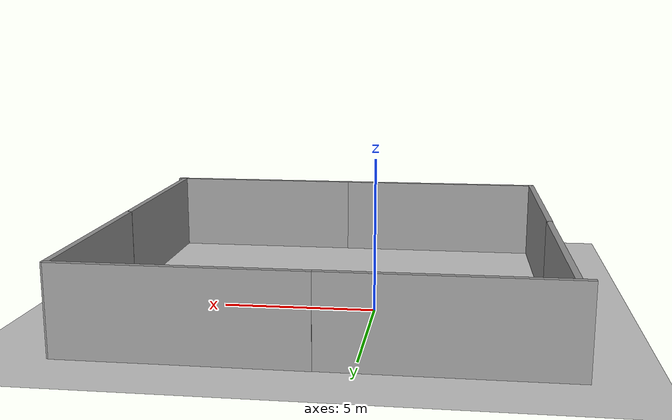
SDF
<sdf version="1.7">
 <world name="default">
  <light name="sun" type="directional">
   <pose>0 0 10 0 -0 0</pose>
   <diffuse>0.8 0.8 0.8 1</diffuse>
   <specular>0.2 0.2 0.2 1</specular>
   <attenuation>
    <range>1000</range>
    <constant>0.9</constant>
    <linear>0.01</linear>
    <quadratic>0.001</quadratic>
   </attenuation>
   <direction>-0.5 0.1 -0.9</direction>
   <spot><inner_angle>0</inner_angle><outer_angle>0</outer_angle><falloff>0</falloff></spot>
  </light>
  <model name="ground_plane">
   <static>1</static>
   <link name="link">
    <collision name="collision">
     <geometry><plane><normal>0 0 1</normal><size>100 100</size></plane></geometry>
     <surface>
      <contact><collide_bitmask>65535</collide_bitmask></contact>
      <friction><ode><mu>100</mu><mu2>50</mu2></ode></friction>
     </surface>
    </collision>
    <visual name="visual">
     <cast_shadows>0</cast_shadows>
     <geometry><plane><normal>0 0 1</normal><size>100 100</size></plane></geometry>
     <material>
      <script><uri>file://media/materials/scripts/gazebo.material</uri><name>Gazebo/Grey</name></script>
     </material>
    </visual>
   </link>
  </model>
  <gravity>0 0 -9.8</gravity>
  <magnetic_field>6e-06 2.3e-05 -4.2e-05</magnetic_field>
  <atmosphere type="adiabatic"/>
  <physics type="ode">
   <max_step_size>0.001</max_step_size>
   <real_time_factor>1</real_time_factor>
   <real_time_update_rate>1000</real_time_update_rate>
  </physics>
  <scene><ambient>0.4 0.4 0.4 1</ambient><background>0.7 0.7 0.7 1</background><shadows>1</shadows></scene>
  <spherical_coordinates>
   <surface_model>EARTH_WGS84</surface_model>
   <latitude_deg>0</latitude_deg>
   <longitude_deg>0</longitude_deg>
   <elevation>0</elevation>
   <heading_deg>0</heading_deg>
  </spherical_coordinates>
  <model name="grey_wall">
   <static>1</static>
   <link name="link">
    <pose>0 0 1.4 0 -0 0</pose>
    <collision name="collision"><geometry><box><size>7.5 0.2 2.8</size></box></geometry></collision>
    <visual name="visual">
     <cast_shadows>0</cast_shadows>
     <geometry><box><size>7.5 0.2 2.8</size></box></geometry>
     <material>
      <script>
       <uri>model://grey_wall/materials/scripts</uri>
       <uri>model://grey_wall/materials/textures</uri>
       <name>vrc/grey_wall</name>
      </script>
     </material>
    </visual>
   </link>
   <pose>5.41172 -8.99503 0 0 -0 0</pose>
  </model>
  <model name="grey_wall_0">
   <static>1</static>
   <link name="link">
    <pose>0 0 1.4 0 -0 0</pose>
    <collision name="collision"><geometry><box><size>7.5 0.2 2.8</size></box></geometry></collision>
    <visual name="visual">
     <cast_shadows>0</cast_shadows>
     <geometry><box><size>7.5 0.2 2.8</size></box></geometry>
     <material>
      <script>
       <uri>model://grey_wall/materials/scripts</uri>
       <uri>model://grey_wall/materials/textures</uri>
       <name>vrc/grey_wall</name>
      </script>
     </material>
    </visual>
   </link>
   <pose>-1.80246 -8.9895 0 0 -0 0</pose>
  </model>
  <model name="grey_wall_1">
   <static>1</static>
   <link name="link">
    <pose>0 0 1.4 0 -0 0</pose>
    <collision name="collision"><geometry><box><size>7.5 0.2 2.8</size></box></geometry></collision>
    <visual name="visual">
     <cast_shadows>0</cast_shadows>
     <geometry><box><size>7.5 0.2 2.8</size></box></geometry>
     <material>
      <script>
       <uri>model://grey_wall/materials/scripts</uri>
       <uri>model://grey_wall/materials/textures</uri>
       <name>vrc/grey_wall</name>
      </script>
     </material>
    </visual>
   </link>
   <pose>8.83904 -5.24827 0 0 0 -1.54979</pose>
  </model>
  <model name="grey_wall_1_clone">
   <static>1</static>
   <link name="link">
    <pose>0 0 1.4 0 -0 0</pose>
    <collision name="collision"><geometry><box><size>7.5 0.2 2.8</size></box></geometry></collision>
    <visual name="visual">
     <cast_shadows>0</cast_shadows>
     <geometry><box><size>7.5 0.2 2.8</size></box></geometry>
     <material>
      <script>
       <uri>model://grey_wall/materials/scripts</uri>
       <uri>model://grey_wall/materials/textures</uri>
       <name>vrc/grey_wall</name>
      </script>
     </material>
    </visual>
   </link>
   <pose>8.68837 2.12556 0 0 0 -1.54979</pose>
  </model>
  <model name="grey_wall_0_clone">
   <static>1</static>
   <link name="link">
    <pose>0 0 1.4 0 -0 0</pose>
    <collision name="collision"><geometry><box><size>7.5 0.2 2.8</size></box></geometry></collision>
    <visual name="visual">
     <cast_shadows>0</cast_shadows>
     <geometry><box><size>7.5 0.2 2.8</size></box></geometry>
     <material>
      <script>
       <uri>model://grey_wall/materials/scripts</uri>
       <uri>model://grey_wall/materials/textures</uri>
       <name>vrc/grey_wall</name>
      </script>
     </material>
    </visual>
   </link>
   <pose>4.89665 5.81008 0 0 -0 0</pose>
  </model>
  <model name="grey_wall_0_clone_0">
   <static>1</static>
   <link name="link">
    <pose>0 0 1.4 0 -0 0</pose>
    <collision name="collision"><geometry><box><size>7.5 0.2 2.8</size></box></geometry></collision>
    <visual name="visual">
     <cast_shadows>0</cast_shadows>
     <geometry><box><size>7.5 0.2 2.8</size></box></geometry>
     <material>
      <script>
       <uri>model://grey_wall/materials/scripts</uri>
       <uri>model://grey_wall/materials/textures</uri>
       <name>vrc/grey_wall</name>
      </script>
     </material>
    </visual>
   </link>
   <pose>-2.49358 5.79396 0 0 -0 0</pose>
  </model>
  <model name="grey_wall_1_clone_0">
   <static>1</static>
   <link name="link">
    <pose>0 0 1.4 0 -0 0</pose>
    <collision name="collision"><geometry><box><size>7.5 0.2 2.8</size></box></geometry></collision>
    <visual name="visual">
     <cast_shadows>0</cast_shadows>
     <geometry><box><size>7.5 0.2 2.8</size></box></geometry>
     <material>
      <script>
       <uri>model://grey_wall/materials/scripts</uri>
       <uri>model://grey_wall/materials/textures</uri>
       <name>vrc/grey_wall</name>
      </script>
     </material>
    </visual>
   </link>
   <pose>-5.58474 -5.3197 0 0 0 -1.54979</pose>
  </model>
  <model name="grey_wall_1_clone_1">
   <static>1</static>
   <link name="link">
    <pose>0 0 1.4 0 -0 0</pose>
    <collision name="collision"><geometry><box><size>7.5 0.2 2.8</size></box></geometry></collision>
    <visual name="visual">
     <cast_shadows>0</cast_shadows>
     <geometry><box><size>7.5 0.2 2.8</size></box></geometry>
     <material>
      <script>
       <uri>model://grey_wall/materials/scripts</uri>
       <uri>model://grey_wall/materials/textures</uri>
       <name>vrc/grey_wall</name>
      </script>
     </material>
    </visual>
   </link>
   <pose>-5.72125 2.02657 0 0 0 -1.54979</pose>
  </model>
 </world>
</sdf>
